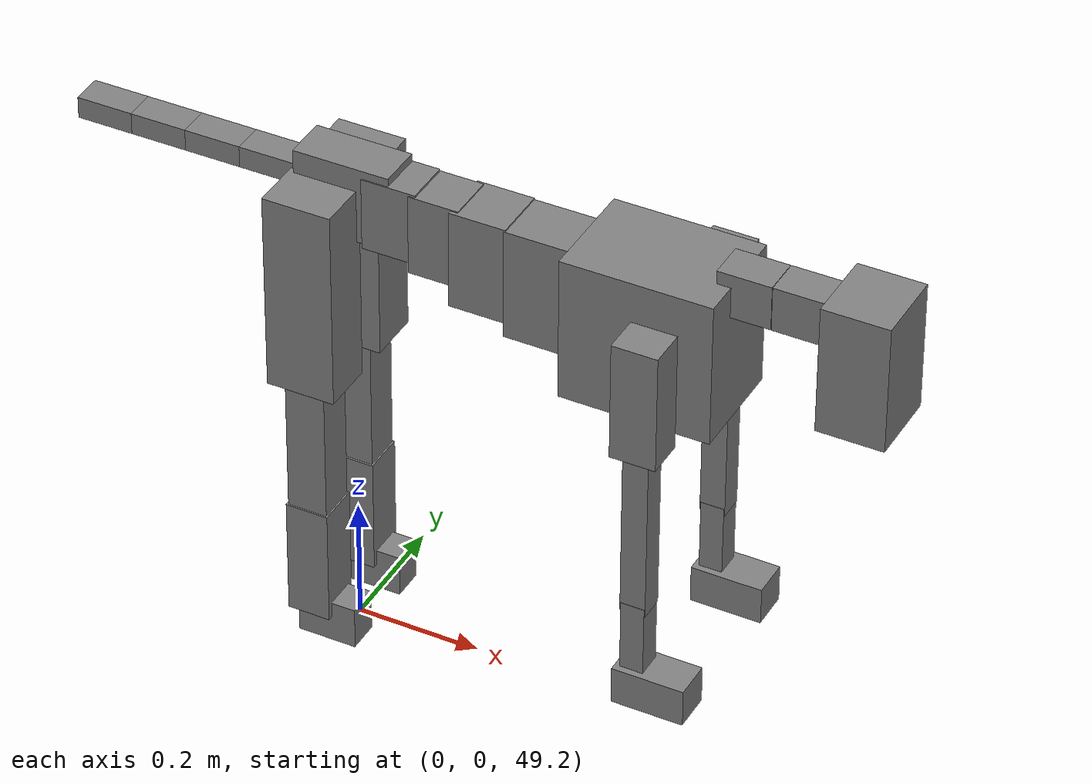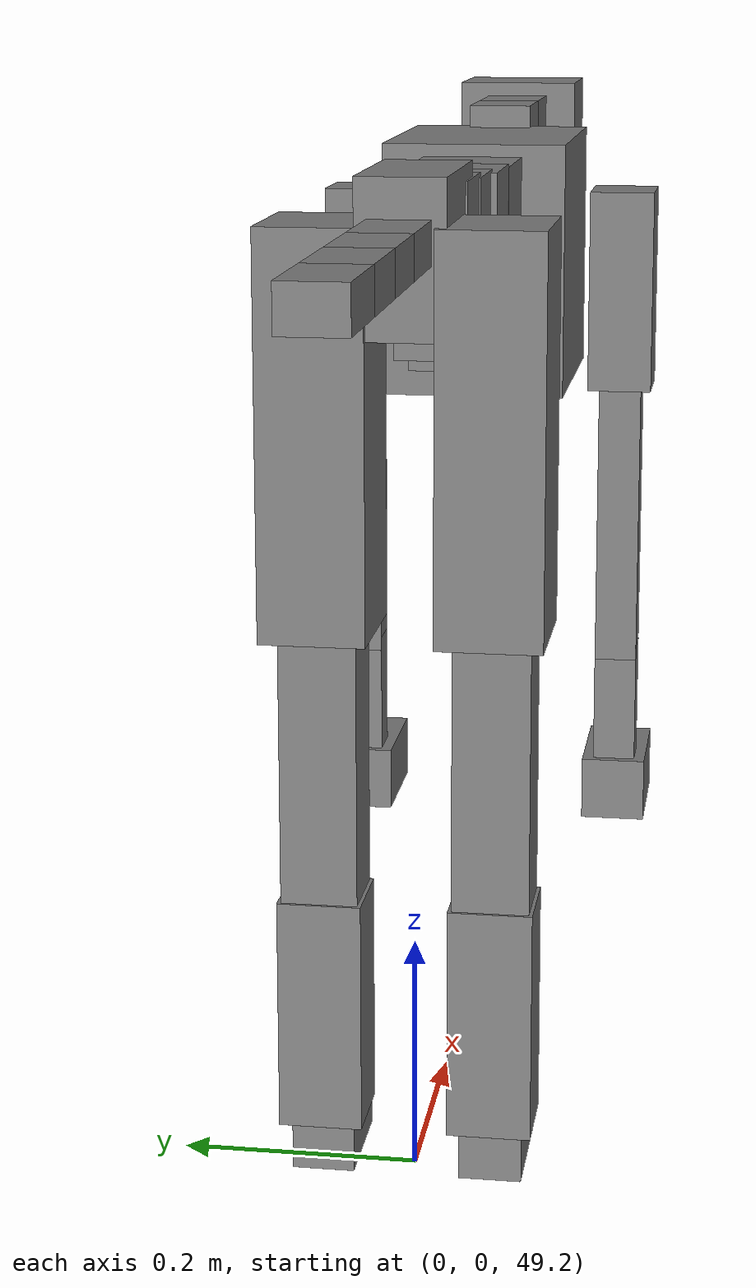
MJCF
<mujoco model="dog">

    <default>
        <joint armature="0.02" stiffness="1" damping="0.2" limited="true"/>
        <geom condim="3" friction="1 0.05 0.05" margin="0.01"/>
        <motor ctrllimited="true" ctrlrange="-1.0 1.0" forcelimited="true" gear="50"/>
    </default>

    <compiler inertiafromgeom="true" angle="radian"/>

    <option timestep="0.016" iterations="50" tolerance="1e-10" solver="Newton" jacobian="dense" cone="pyramidal"/>

    <size nconmax="20000" njmax="60000" nstack="5000000"/>
    <visual>
        <map force="0.1" zfar="30"/>
        <rgba haze="0.15 0.25 0.35 1"/>
        <quality shadowsize="2048"/>
        <global offwidth="800" offheight="800"/>
    </visual>

    <asset>
        <texture type="skybox" builtin="gradient" rgb1="0.3 0.5 0.7" rgb2="0 0 0" width="512" height="512"/>
        <texture name="texplane" type="2d" builtin="checker" rgb1=".2 .3 .4" rgb2=".1 0.15 0.2" width="512" height="512"
                 mark="cross" markrgb=".8 .8 .8"/>
        <texture name="texgeom" type="cube" builtin="flat" mark="cross" width="127" height="1278" rgb1="0.8 0.6 0.4"
                 rgb2="0.8 0.6 0.4" markrgb="1 1 1" random="0.01"/>

        <material name="matplane" reflectance="0.3" texture="texplane" texrepeat="1 1" texuniform="true"/>
        <material name="matgeom" texture="texgeom" texuniform="true" rgba="0.8 0.6 .4 1"/>
    </asset>

    <worldbody>
        <geom name="floor" pos="0 0 0" size="0 0 .25" type="plane" material="matplane" condim="3"/>

        <light directional="false" diffuse=".2 .2 .2" specular="0 0 0" pos="0 0 5" dir="0 0 -1" castshadow="false"/>
        <light mode="targetbodycom" target="torso" directional="false" diffuse=".8 .8 .8" specular="0.3 0.3 0.3"
               pos="0 0 4.0" dir="0 0 -1"/>

        <body name="root" pos="0 0 50">
            <freejoint name="root_1"/>
            <geom type="box" pos="0 0 -0.02" size="0.0774  0.0358  0.063" density="2030"/>

            <body name="spine1" pos="0.054 0 0">
                <joint name="spine1_y" axis="0 1 0" range="0 0.7" limited="true"/>
                <geom type="box" pos="0.02375 0 -0.03" size="0.04375  0.0375  0.05985" density="2030"/>

                <body name="spine2" pos="0.0612 0 0">
                    <joint name="spine2_y" axis="0 1 0" range="-0.15 0.15" limited="true"/>
                    <geom type="box" pos="0.03555  0  -0.04" size="0.04055  0.039  0.06615" density="2030"/>

                    <body name="spine3" pos="0.0730 0 0">
                        <joint name="spine3_y" axis="0 1 0" range="-0.15 0.15" limited="true"/>
                        <geom type="box" pos="0.03555  0  -0.057" size="0.04555  0.0445  0.081" density="2030"/>

                        <body name="spine4" pos="0.0780 0 0">
                            <joint name="spine4_y" axis="0 1 0" range="-0.15 0.15" limited="true"/>
                            <geom type="box" pos="0.05265  0  -0.07" size="0.05265  0.045  0.09135" density="2030"/>

                            <body name="torso" pos="0.1082 0 0">
                                <joint name="torso_y" axis="0 1 0" range="-0.15 0.15" limited="true"/>
                                <geom type="box" pos="0.11925  0  -0.085" size="0.11925  0.085  0.11745"
                                      density="2030"/>

                                <body name="neck1" pos="0.2160  0   0.0180">
                                    <joint name="neck1_y" axis="0 1 0" range="-1.2  -1" limited="true"/>
                                    <geom type="box" pos="0.0423  0  0" size="0.0423  0.03  0.036" density="2325"/>

                                    <body name="neck2" pos="0.0853  0  0">
                                        <joint name="neck2_y" axis="0 1 0" range="0.1  0" limited="true"/>
                                        <geom type="box" pos="0.0423  0  0" size="0.0423  0.03  0.036" density="2325"/>

                                        <body name="head" pos="0.0853  0  0">
                                            <joint name="head_y" axis="0 1 0" range="-0.3  -0.2" limited="true"/>
                                            <geom type="box" pos="0.0531  0  -0.055" size="0.0531  0.06  0.1044"
                                                  density="4030"/>

                                        </body>
                                    </body>
                                </body>

                                <body name="front_shoulder" pos="0.156  0   -0.0480">
                                    <joint name="front_shoulder_y" axis="0 1 0" range="-1 1.5" limited="true"/>
                                    <geom type="box" pos="0 0.13 -0.0704" size="0.0361  0.0308  0.0970" density="1158"/>
                                    <geom type="box" pos="0 -0.13 -0.0704" size="0.0361  0.0308  0.0970"
                                          density="1158"/>

                                    <body name="front_elbow" pos="0  0  -0.1408">
                                        <joint name="front_elbow_y" axis="0 1 0" range="-2 0" limited="true"/>
                                        <geom type="box" pos="0 0.13 -0.1518" size="0.0201  0.0205  0.1518"
                                              density="1081"/>
                                        <geom type="box" pos="0 -0.13 -0.1518" size="0.0201  0.0205  0.1518"
                                              density="1081"/>

                                        <body name="front_wrist" pos="0  0  -0.3037">
                                            <joint name="front_wrist_y" axis="0 1 0" range="-0.2 0" limited="true"/>
                                            <geom type="box" pos="0 0.13 -0.0599" size="0.0186  0.0207  0.0731"
                                                  density="1664"/>
                                            <geom type="box" pos="0 -0.13 -0.0599" size="0.0186  0.0207  0.0731"
                                                  density="1664"/>

                                            <body name="front_finger_end" pos="0  0  -0.1198">
                                                <joint name="front_finger_y" axis="0 1 0" range="-0.4 1"
                                                       limited="true"/>
                                                <geom type="box" pos="0.0313  0.13  -0.0158"
                                                      size="0.0575  0.0313  0.0308" density="1515"/>
                                                <geom type="box" pos="0.0313  -0.13  -0.0158"
                                                      size="0.0575  0.0313  0.0308" density="1515"/>

                                            </body>

                                        </body>
                                    </body>
                                </body>

                            </body>
                        </body>
                    </body>
                </body>
            </body>

            <body name="back_hip" pos="-0.03 0 -0.018">
                <joint name="back_hip_y" axis="0 1 0" range="-1.5 0.3" limited="true"/>
                <geom type="box" pos="0 0.07 -0.1414" size="0.0550  0.0431  0.1642" density="1154"/>
                <geom type="box" pos="0 -0.07 -0.1414" size="0.0550  0.0431  0.1642" density="1154"/>

                <body name="back_knee" pos="0  0  -0.2828">
                    <joint name="back_knee_y" axis="0 1 0" range="0 2.8" limited="true"/>
                    <geom type="box" pos="0 0.07 -0.1289" size="0.0320  0.0315  0.1445" density="1227"/>
                    <geom type="box" pos="0 -0.07 -0.1289" size="0.0320  0.0315  0.1445" density="1227"/>

                    <body name="back_ankle" pos="0  0  -0.2579">
                        <joint name="back_ankle_y" axis="0 1 0" range="-2.2 0" limited="true"/>
                        <geom type="box" pos="0 0.07 -0.0861" size="0.0345  0.0345  0.0974" density="1284"/>
                        <geom type="box" pos="0 -0.07 -0.0861" size="0.0345  0.0345  0.0974" density="1284"/>

                        <body name="back_toe_end" pos="0  0  -0.1723">
                            <joint name="back_toe_y" axis="0 1 0" range="-0.4 1" limited="true"/>
                            <geom type="box" pos="0.0259  0.07  -0.0201" size="0.0475  0.0259  0.0351" density="1515"/>
                            <geom type="box" pos="0.0259  -0.07  -0.0201" size="0.0475  0.0259  0.0351" density="1515"/>

                        </body>
                    </body>
                </body>
            </body>

            <body name="tail1" pos="-0.074 0 -0.006">
                <joint name="tail1_y" axis="0 1 0" range="-0.2 0.2" limited="true"/>
                <geom type="box" pos="-0.0536  0  0" size="0.045  0.025  0.0175" density="1587"/>

                <body name="tail2" pos="-0.09 0 0">
                    <joint name="tail2_y" axis="0 1 0" range="-0.2 0.2" limited="true"/>
                    <geom type="box" pos="-0.0536  0  0" size="0.045  0.025  0.0175" density="1587"/>

                    <body name="tail3" pos="-0.09 0 0">
                        <joint name="tail3_y" axis="0 1 0" range="-0.2 0.2" limited="true"/>
                        <geom type="box" pos="-0.0536  0  0" size="0.045  0.025  0.0175" density="1587"/>

                        <body name="tail4" pos="-0.09 0 0">
                            <joint name="tail4_y" axis="0 1 0" range="-0.2 0.2" limited="true"/>
                            <geom type="box" pos="-0.0536  0  0" size="0.045  0.025  0.0175" density="1587"/>

                        </body>
                    </body>
                </body>
            </body>
        </body>
    </worldbody>

    <actuator>
        <motor joint="spine1_y" forcerange="-150 150     "/>
        <motor joint="spine2_y" forcerange="-150 150     "/>
        <motor joint="spine3_y" forcerange="-150 150     "/>
        <motor joint="spine4_y" forcerange="-150 150     "/>
        <motor joint="torso_y" forcerange="-150 150     "/>
        <motor joint="neck1_y" forcerange="-100 100       "/>
        <motor joint="neck2_y" forcerange="-100 100       "/>
        <motor joint="head_y" forcerange="-150 150       "/>
        <motor joint="front_shoulder_y" forcerange="-193.51 111.90"/>
        <motor joint="front_elbow_y" forcerange="-113.89 135.47"/>
        <motor joint="front_wrist_y" forcerange="-88.48 76.87"/>
        <motor joint="front_finger_y" forcerange="-31.95 95.23"/>
        <motor joint="back_hip_y" forcerange="-387.70 387.31"/>
        <motor joint="back_knee_y" forcerange="-324.26 334.29"/>
        <motor joint="back_angle_y" forcerange="-218.09 234.08"/>
        <motor joint="back_toe_y" forcerange="-82.60 44.81"/>
        <motor joint="tail1_y" forcerange="-50 50     "/>
        <motor joint="tail2_y" forcerange="-50 50     "/>
        <motor joint="tail3_y" forcerange="-50 50     "/>
        <motor joint="tail4_y" forcerange="-50 50     "/>
    </actuator>
</mujoco>
